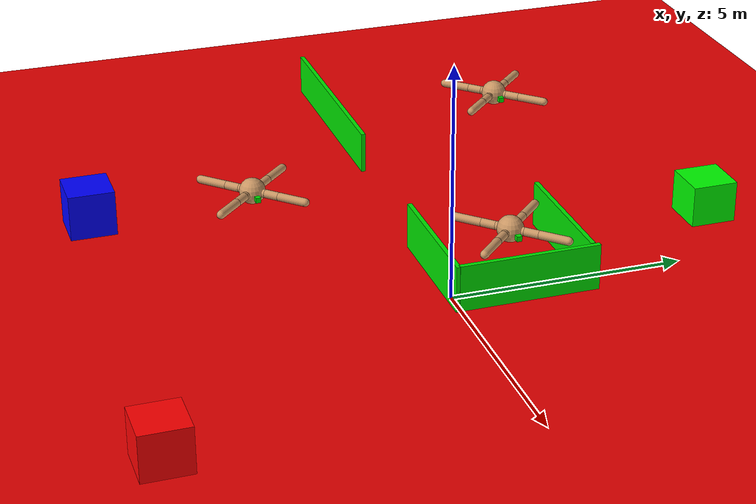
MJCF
<mujoco>
    <custom>
      <numeric data="0.0 0.0 0.55 1.0 0.0 0.0 0.0 0.0 1.0 0.0 -1.0 0.0 -1.0 0.0 1.0" name="init_qpos"/>
    </custom>
    <default>
      <joint armature="1" damping="1" limited="true"/>
      <geom conaffinity="0" condim="3" density="5.0" friction="1 0.5 0.5" margin="0.01" rgba="0.8 0.6 0.4 1"/>
    </default>
    <asset>
      <texture builtin="gradient" height="100" rgb1="1 1 1" rgb2="0 0 0" type="skybox" width="100"/>
      <texture builtin="flat" height="1278" mark="cross" markrgb="1 1 1" name="texgeom" random="0.01" rgb1="0.8 0.6 0.4" rgb2="0.8 0.6 0.4" type="cube" width="127"/>
      <texture builtin="checker" height="100" name="texplane" rgb1="0 0 0" rgb2="0.8 0.8 0.8" type="2d" width="100"/>
      <material name="MatPlane" reflectance="0.5" shininess="1" specular="1" texrepeat="60 60" texture="texplane"/>
      <material name="geom" texture="texgeom" texuniform="true"/>
    </asset>
    <worldbody>
    <body name="agent1_torso" pos="3 0 3">
    <camera name="agent1_track" mode="trackcom" pos="0 -3 0.3" xyaxes="1 0 0 0 0 1"/>
    <site name="agent1_box_range" type="box" pos="0.4 0 0" size=".05 .05 .05" rgba="0 .9 0 1" euler="0 90 0"/>
    <geom name="agent1_torso_geom" pos="0 0 0" size="0.25" type="sphere"/>
    <joint armature="0" damping="0" limited="false" margin="0.01" name="agent1_root" pos="0 0 0" type="free"/>
    <body name="agent1_front_left_leg" pos="0 0 0">
      <geom fromto="0.0 0.0 0.0 0.2 0.2 0.0" name="agent1_aux_1_geom" size="0.08" type="capsule"/>
      <body name="agent1_aux_1" pos="0.2 0.2 0">
        <joint axis="0 0 1" name="agent1_hip_1" pos="0.0 0.0 0.0" range="-30 30" type="hinge"/>
        <geom fromto="0.0 0.0 0.0 0.2 0.2 0.0" name="agent1_left_leg_geom" size="0.08" type="capsule"/>
        <body pos="0.2 0.2 0">
          <joint axis="-1 1 0" name="agent1_ankle_1" pos="0.0 0.0 0.0" range="30 70" type="hinge"/>
          <geom fromto="0.0 0.0 0.0 0.4 0.4 0.0" name="agent1_left_ankle_geom" size="0.08" type="capsule"/>
        </body>
      </body>
    </body>
    <body name="agent1_front_right_leg" pos="0 0 0">
      <geom fromto="0.0 0.0 0.0 -0.2 0.2 0.0" name="agent1_aux_2_geom" size="0.08" type="capsule"/>
      <body name="agent1_aux_2" pos="-0.2 0.2 0">
        <joint axis="0 0 1" name="agent1_hip_2" pos="0.0 0.0 0.0" range="-30 30" type="hinge"/>
        <geom fromto="0.0 0.0 0.0 -0.2 0.2 0.0" name="agent1_right_leg_geom" size="0.08" type="capsule"/>
        <body pos="-0.2 0.2 0">
          <joint axis="1 1 0" name="agent1_ankle_2" pos="0.0 0.0 0.0" range="-70 -30" type="hinge"/>
          <geom fromto="0.0 0.0 0.0 -0.4 0.4 0.0" name="agent1_right_ankle_geom" size="0.08" type="capsule"/>
        </body>
      </body>
    </body>
    <body name="agent1_back_leg" pos="0 0 0">
      <geom fromto="0.0 0.0 0.0 -0.2 -0.2 0.0" name="agent1_aux_3_geom" size="0.08" type="capsule"/>
      <body name="agent1_aux_3" pos="-0.2 -0.2 0">
        <joint axis="0 0 1" name="agent1_hip_3" pos="0.0 0.0 0.0" range="-30 30" type="hinge"/>
        <geom fromto="0.0 0.0 0.0 -0.2 -0.2 0.0" name="agent1_back_leg_geom" size="0.08" type="capsule"/>
        <body pos="-0.2 -0.2 0">
          <joint axis="-1 1 0" name="agent1_ankle_3" pos="0.0 0.0 0.0" range="-70 -30" type="hinge"/>
          <geom fromto="0.0 0.0 0.0 -0.4 -0.4 0.0" name="agent1_third_ankle_geom" size="0.08" type="capsule"/>
        </body>
      </body>
    </body>
    <body name="agent1_right_back_leg" pos="0 0 0">
      <geom fromto="0.0 0.0 0.0 0.2 -0.2 0.0" name="agent1_aux_4_geom" size="0.08" type="capsule"/>
      <body name="agent1_aux_4" pos="0.2 -0.2 0">
        <joint axis="0 0 1" name="agent1_hip_4" pos="0.0 0.0 0.0" range="-30 30" type="hinge"/>
        <geom fromto="0.0 0.0 0.0 0.2 -0.2 0.0" name="agent1_rightback_leg_geom" size="0.08" type="capsule"/>
        <body pos="0.2 -0.2 0">
          <joint axis="1 1 0" name="agent1_ankle_4" pos="0.0 0.0 0.0" range="30 70" type="hinge"/>
          <geom fromto="0.0 0.0 0.0 0.4 -0.4 0.0" name="agent1_fourth_ankle_geom" size="0.08" type="capsule"/>
        </body>
      </body>
    </body>
    </body>
    <body name="agent2_torso" pos="-3 2 3">
    <camera name="agent2_track" mode="trackcom" pos="0 -3 0.3" xyaxes="1 0 0 0 0 1"/>
    <site name="agent2_box_range" type="box" pos="0.4 0 0" size=".05 .05 .05" rgba="0 .9 0 1" euler="0 90 0"/>
    <geom name="agent2_torso_geom" pos="0 0 0" size="0.25" type="sphere"/>
    <joint armature="0" damping="0" limited="false" margin="0.01" name="agent2_root" pos="0 0 0" type="free"/>
    <body name="agent2_front_left_leg" pos="0 0 0">
      <geom fromto="0.0 0.0 0.0 0.2 0.2 0.0" name="agent2_aux_1_geom" size="0.08" type="capsule"/>
      <body name="agent2_aux_1" pos="0.2 0.2 0">
        <joint axis="0 0 1" name="agent2_hip_1" pos="0.0 0.0 0.0" range="-30 30" type="hinge"/>
        <geom fromto="0.0 0.0 0.0 0.2 0.2 0.0" name="agent2_left_leg_geom" size="0.08" type="capsule"/>
        <body pos="0.2 0.2 0">
          <joint axis="-1 1 0" name="agent2_ankle_1" pos="0.0 0.0 0.0" range="30 70" type="hinge"/>
          <geom fromto="0.0 0.0 0.0 0.4 0.4 0.0" name="agent2_left_ankle_geom" size="0.08" type="capsule"/>
        </body>
      </body>
    </body>
    <body name="agent2_front_right_leg" pos="0 0 0">
      <geom fromto="0.0 0.0 0.0 -0.2 0.2 0.0" name="agent2_aux_2_geom" size="0.08" type="capsule"/>
      <body name="agent2_aux_2" pos="-0.2 0.2 0">
        <joint axis="0 0 1" name="agent2_hip_2" pos="0.0 0.0 0.0" range="-30 30" type="hinge"/>
        <geom fromto="0.0 0.0 0.0 -0.2 0.2 0.0" name="agent2_right_leg_geom" size="0.08" type="capsule"/>
        <body pos="-0.2 0.2 0">
          <joint axis="1 1 0" name="agent2_ankle_2" pos="0.0 0.0 0.0" range="-70 -30" type="hinge"/>
          <geom fromto="0.0 0.0 0.0 -0.4 0.4 0.0" name="agent2_right_ankle_geom" size="0.08" type="capsule"/>
        </body>
      </body>
    </body>
    <body name="agent2_back_leg" pos="0 0 0">
      <geom fromto="0.0 0.0 0.0 -0.2 -0.2 0.0" name="agent2_aux_3_geom" size="0.08" type="capsule"/>
      <body name="agent2_aux_3" pos="-0.2 -0.2 0">
        <joint axis="0 0 1" name="agent2_hip_3" pos="0.0 0.0 0.0" range="-30 30" type="hinge"/>
        <geom fromto="0.0 0.0 0.0 -0.2 -0.2 0.0" name="agent2_back_leg_geom" size="0.08" type="capsule"/>
        <body pos="-0.2 -0.2 0">
          <joint axis="-1 1 0" name="agent2_ankle_3" pos="0.0 0.0 0.0" range="-70 -30" type="hinge"/>
          <geom fromto="0.0 0.0 0.0 -0.4 -0.4 0.0" name="agent2_third_ankle_geom" size="0.08" type="capsule"/>
        </body>
      </body>
    </body>
    <body name="agent2_right_back_leg" pos="0 0 0">
      <geom fromto="0.0 0.0 0.0 0.2 -0.2 0.0" name="agent2_aux_4_geom" size="0.08" type="capsule"/>
      <body name="agent2_aux_4" pos="0.2 -0.2 0">
        <joint axis="0 0 1" name="agent2_hip_4" pos="0.0 0.0 0.0" range="-30 30" type="hinge"/>
        <geom fromto="0.0 0.0 0.0 0.2 -0.2 0.0" name="agent2_rightback_leg_geom" size="0.08" type="capsule"/>
        <body pos="0.2 -0.2 0">
          <joint axis="1 1 0" name="agent2_ankle_4" pos="0.0 0.0 0.0" range="30 70" type="hinge"/>
          <geom fromto="0.0 0.0 0.0 0.4 -0.4 0.0" name="agent2_fourth_ankle_geom" size="0.08" type="capsule"/>
        </body>
      </body>
    </body>
    </body>
    <body name="agent3_torso" pos="0 -4 3">
    <camera name="agent3_track" mode="trackcom" pos="0 -3 0.3" xyaxes="1 0 0 0 0 1"/>
    <site name="agent3_box_range" type="box" pos="0.4 0 0" size=".05 .05 .05" rgba="0 .9 0 1" euler="0 90 0"/>
    <geom name="agent3_torso_geom" pos="0 0 0" size="0.25" type="sphere"/>
    <joint armature="0" damping="0" limited="false" margin="0.01" name="agent3_root" pos="0 0 0" type="free"/>
    <body name="agent3_front_left_leg" pos="0 0 0">
      <geom fromto="0.0 0.0 0.0 0.2 0.2 0.0" name="agent3_aux_1_geom" size="0.08" type="capsule"/>
      <body name="agent3_aux_1" pos="0.2 0.2 0">
        <joint axis="0 0 1" name="agent3_hip_1" pos="0.0 0.0 0.0" range="-30 30" type="hinge"/>
        <geom fromto="0.0 0.0 0.0 0.2 0.2 0.0" name="agent3_left_leg_geom" size="0.08" type="capsule"/>
        <body pos="0.2 0.2 0">
          <joint axis="-1 1 0" name="agent3_ankle_1" pos="0.0 0.0 0.0" range="30 70" type="hinge"/>
          <geom fromto="0.0 0.0 0.0 0.4 0.4 0.0" name="agent3_left_ankle_geom" size="0.08" type="capsule"/>
        </body>
      </body>
    </body>
    <body name="agent3_front_right_leg" pos="0 0 0">
      <geom fromto="0.0 0.0 0.0 -0.2 0.2 0.0" name="agent3_aux_2_geom" size="0.08" type="capsule"/>
      <body name="agent3_aux_2" pos="-0.2 0.2 0">
        <joint axis="0 0 1" name="agent3_hip_2" pos="0.0 0.0 0.0" range="-30 30" type="hinge"/>
        <geom fromto="0.0 0.0 0.0 -0.2 0.2 0.0" name="agent3_right_leg_geom" size="0.08" type="capsule"/>
        <body pos="-0.2 0.2 0">
          <joint axis="1 1 0" name="agent3_ankle_2" pos="0.0 0.0 0.0" range="-70 -30" type="hinge"/>
          <geom fromto="0.0 0.0 0.0 -0.4 0.4 0.0" name="agent3_right_ankle_geom" size="0.08" type="capsule"/>
        </body>
      </body>
    </body>
    <body name="agent3_back_leg" pos="0 0 0">
      <geom fromto="0.0 0.0 0.0 -0.2 -0.2 0.0" name="agent3_aux_3_geom" size="0.08" type="capsule"/>
      <body name="agent3_aux_3" pos="-0.2 -0.2 0">
        <joint axis="0 0 1" name="agent3_hip_3" pos="0.0 0.0 0.0" range="-30 30" type="hinge"/>
        <geom fromto="0.0 0.0 0.0 -0.2 -0.2 0.0" name="agent3_back_leg_geom" size="0.08" type="capsule"/>
        <body pos="-0.2 -0.2 0">
          <joint axis="-1 1 0" name="agent3_ankle_3" pos="0.0 0.0 0.0" range="-70 -30" type="hinge"/>
          <geom fromto="0.0 0.0 0.0 -0.4 -0.4 0.0" name="agent3_third_ankle_geom" size="0.08" type="capsule"/>
        </body>
      </body>
    </body>
    <body name="agent3_right_back_leg" pos="0 0 0">
      <geom fromto="0.0 0.0 0.0 0.2 -0.2 0.0" name="agent3_aux_4_geom" size="0.08" type="capsule"/>
      <body name="agent3_aux_4" pos="0.2 -0.2 0">
        <joint axis="0 0 1" name="agent3_hip_4" pos="0.0 0.0 0.0" range="-30 30" type="hinge"/>
        <geom fromto="0.0 0.0 0.0 0.2 -0.2 0.0" name="agent3_rightback_leg_geom" size="0.08" type="capsule"/>
        <body pos="0.2 -0.2 0">
          <joint axis="1 1 0" name="agent3_ankle_4" pos="0.0 0.0 0.0" range="30 70" type="hinge"/>
          <geom fromto="0.0 0.0 0.0 0.4 -0.4 0.0" name="agent3_fourth_ankle_geom" size="0.08" type="capsule"/>
        </body>
      </body>
    </body>
    </body>
    <light diffuse=".5 .5 .5" pos="0 0 5" dir="0 0 -1" />
    <geom conaffinity="1" name="ground" condim="3" type="plane" size="15 15 3.330669E-16" rgba=".9 0 0 1" />
    <body pos="0.53 1.471 0.5">
      <geom conaffinity="1" condim="3" type="box" size="0.05 1.5 0.5" euler="0 0 0" rgba="0 .9 0 1" />
    </body>
    <body pos="-0.934 -0.053 0.488">
      <geom conaffinity="1" condim="3" type="box" size="1.5 0.05 0.5" euler="0 0 0" rgba="0 .9 0 1" />
    </body>
    <body pos="-1.027519 2.838878 0.5085219">
      <geom conaffinity="1" condim="3" type="box" size="1.5 0.05 0.5" euler="0 0 0" rgba="0 .9 0 1" />
    </body>
    <body pos="3.927995 -6.745218 0.4348531" name="target_1">
      <geom conaffinity="1" condim="3" type="box" size="0.5 0.5 0.5" euler="0 0 0" rgba="255 0 0 1" />
    </body>
    <body pos="-1.864272 6.520146 0.386694" name="target_3">
      <geom conaffinity="1" condim="3" type="box" size="0.5 0.5 0.5" euler="0 0 0" rgba="0 255 0 1" />
    </body>
    <body pos="-8.812729 0.1686049 0.4022825">
      <geom conaffinity="1" condim="3" type="box" size="2.5 0.05 0.5" euler="0 0 0" rgba="0 .9 0 1" />
    </body>
    <body pos="-5.367813 -6.286523 0.5278883" name="target_2">
      <geom conaffinity="1" condim="3" type="box" size="0.5 0.5 0.5" euler="0 0 0" rgba="0 0 255 1" />
    </body>
  </worldbody>
  <actuator>
    <motor ctrllimited="true" ctrlrange="-1.0 1.0" joint="agent1_hip_4" gear="150"/>
    <motor ctrllimited="true" ctrlrange="-1.0 1.0" joint="agent1_ankle_4" gear="150"/>
    <motor ctrllimited="true" ctrlrange="-1.0 1.0" joint="agent1_hip_1" gear="150"/>
    <motor ctrllimited="true" ctrlrange="-1.0 1.0" joint="agent1_ankle_1" gear="150"/>
    <motor ctrllimited="true" ctrlrange="-1.0 1.0" joint="agent1_hip_2" gear="150"/>
    <motor ctrllimited="true" ctrlrange="-1.0 1.0" joint="agent1_ankle_2" gear="150"/>
    <motor ctrllimited="true" ctrlrange="-1.0 1.0" joint="agent1_hip_3" gear="150"/>
    <motor ctrllimited="true" ctrlrange="-1.0 1.0" joint="agent1_ankle_3" gear="150"/>
    <motor ctrllimited="true" ctrlrange="-1.0 1.0" joint="agent2_hip_4" gear="150"/>
    <motor ctrllimited="true" ctrlrange="-1.0 1.0" joint="agent2_ankle_4" gear="150"/>
    <motor ctrllimited="true" ctrlrange="-1.0 1.0" joint="agent2_hip_1" gear="150"/>
    <motor ctrllimited="true" ctrlrange="-1.0 1.0" joint="agent2_ankle_1" gear="150"/>
    <motor ctrllimited="true" ctrlrange="-1.0 1.0" joint="agent2_hip_2" gear="150"/>
    <motor ctrllimited="true" ctrlrange="-1.0 1.0" joint="agent2_ankle_2" gear="150"/>
    <motor ctrllimited="true" ctrlrange="-1.0 1.0" joint="agent2_hip_3" gear="150"/>
    <motor ctrllimited="true" ctrlrange="-1.0 1.0" joint="agent2_ankle_3" gear="150"/>
    <motor ctrllimited="true" ctrlrange="-1.0 1.0" joint="agent3_hip_4" gear="150"/>
    <motor ctrllimited="true" ctrlrange="-1.0 1.0" joint="agent3_ankle_4" gear="150"/>
    <motor ctrllimited="true" ctrlrange="-1.0 1.0" joint="agent3_hip_1" gear="150"/>
    <motor ctrllimited="true" ctrlrange="-1.0 1.0" joint="agent3_ankle_1" gear="150"/>
    <motor ctrllimited="true" ctrlrange="-1.0 1.0" joint="agent3_hip_2" gear="150"/>
    <motor ctrllimited="true" ctrlrange="-1.0 1.0" joint="agent3_ankle_2" gear="150"/>
    <motor ctrllimited="true" ctrlrange="-1.0 1.0" joint="agent3_hip_3" gear="150"/>
    <motor ctrllimited="true" ctrlrange="-1.0 1.0" joint="agent3_ankle_3" gear="150"/>
  </actuator>

  <sensor>
    <rangefinder name="agent1_box1" site="agent1_box_range" cutoff="20"/>
    <frameyaxis name="agent1_yAxis" objtype="site" objname="agent1_box_range"/>
    <rangefinder name="agent2_box1" site="agent2_box_range" cutoff="20"/>
    <frameyaxis name="agent2_yAxis" objtype="site" objname="agent2_box_range"/>
    <rangefinder name="agent3_box1" site="agent3_box_range" cutoff="20"/>
    <frameyaxis name="agent3_yAxis" objtype="site" objname="agent3_box_range"/>
  </sensor>
</mujoco>
